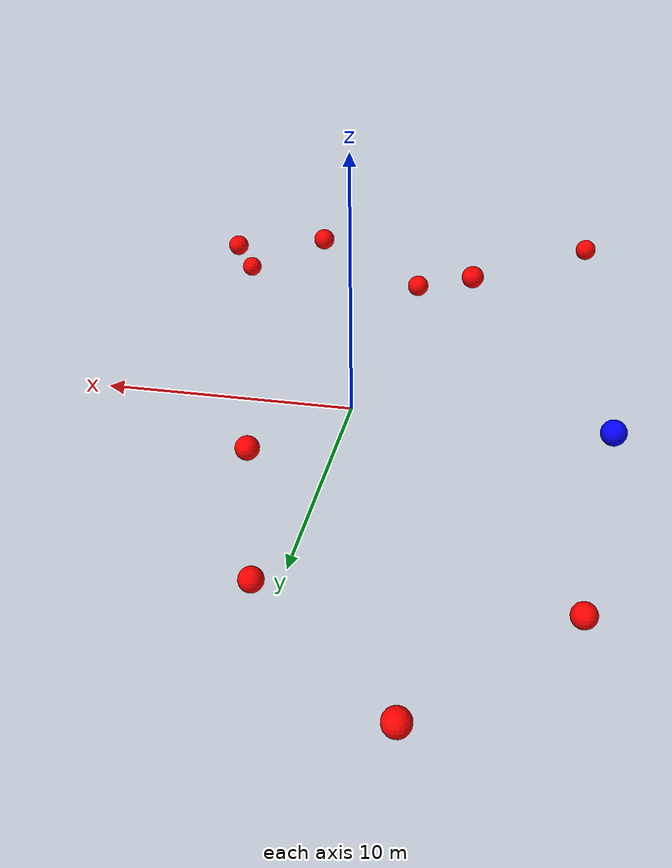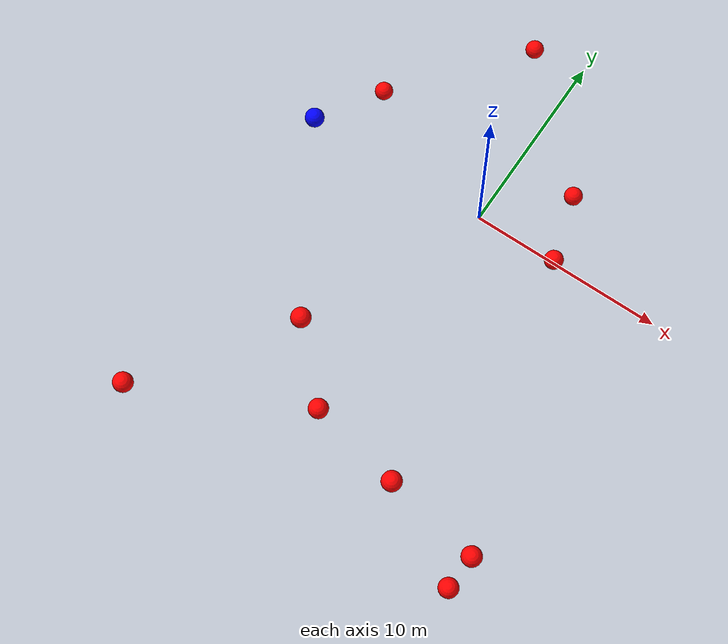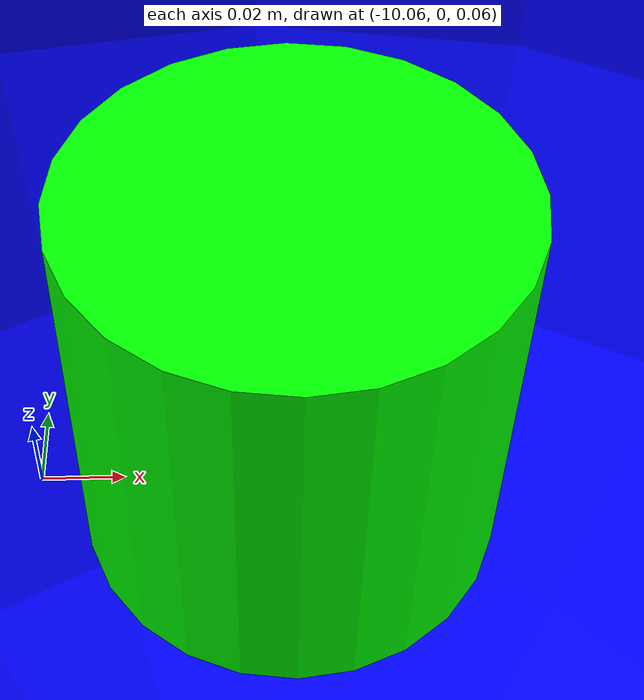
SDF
<?xml version="1.0" ?>
<sdf version="1.8">
    <world name="3d_world">
        <physics name="1ms" type="ode">
            <max_step_size>0.001</max_step_size>
            <real_time_factor>1.0</real_time_factor>
            <real_time_update_rate>1000.0</real_time_update_rate>
        </physics>
        <gravity>0 0 0</gravity>

        <plugin
            filename="gz-sim-physics-system"
            name="gz::sim::v8::systems::Physics">
        </plugin>
        <plugin
            filename="libignition-gazebo-user-commands-system.so"
            name="ignition::gazebo::systems::UserCommands">
        </plugin>
        <plugin
            filename="gz-sim-scene-broadcaster-system"
            name="gz::sim::systems::SceneBroadcaster">
        </plugin>
        <plugin
            filename="gz-sim-sensors-system"
            name="gz::sim::systems::Sensors">
            <render_engine>ogre2</render_engine>
        </plugin>

        <light type="directional" name="sun">
            <cast_shadows>true</cast_shadows>
            <pose>0 0 10 0 0 0</pose>
            <diffuse>0.8 0.8 0.8 1</diffuse>
            <specular>0.2 0.2 0.2 1</specular>
            <attenuation>
                <range>1000</range>
                <constant>0.9</constant>
                <linear>0.01</linear>
                <quadratic>0.001</quadratic>
            </attenuation>
            <direction>-0.5 0.1 -0.9</direction>
        </light>

        <!-- AGENTE -->
        <model name='agente' canonical_link='chassis'>
            <pose relative_to='world'>-10.0 0 0.0 0 0 0</pose>
            <link name='chassis'>
                <pose relative_to='__model__'>0.0 0 0.0 0 0 0</pose>
                <inertial>
                    <mass>1.14395</mass>
                    <inertia>
                        <ixx>0.095329</ixx>
                        <ixy>0</ixy>
                        <ixz>0</ixz>
                        <iyy>0.381317</iyy>
                        <iyz>0</iyz>
                        <izz>0.476646</izz>
                    </inertia>
                </inertial>
                <visual name='visual'>
                    <geometry>
                        <sphere>
                            <radius>0.5</radius>
                        </sphere>
                    </geometry>
                    <material>
                        <ambient>0.0 0.0 1.0 1</ambient>
                        <diffuse>0.0 0.0 1.0 1</diffuse>
                        <specular>0.0 0.0 1.0 1</specular>
                    </material>
                </visual>
                <collision name='collision'>
                    <geometry>
                        <sphere>
                            <radius>0.5</radius>
                        </sphere>
                    </geometry>
                </collision>
                <enable_gravity>false</enable_gravity>
            </link>

            <link name='lidar_link'>
                <pose relative_to='chassis'>0.0 0 0.1 0 0 0</pose>
                <inertial>
                    <mass>0.1</mass>
                    <inertia>
                        <ixx>0.000166667</ixx>
                        <iyy>0.000166667</iyy>
                        <izz>0.000166667</izz>
                    </inertia>
                </inertial>
                <collision name='collision'>
                    <geometry>
                        <cylinder>
                            <radius>0.05</radius>
                            <length>0.1</length>
                        </cylinder>
                    </geometry>
                </collision>
                <visual name='visual'>
                    <geometry>
                        <cylinder>
                            <radius>0.05</radius>
                            <length>0.1</length>
                        </cylinder>
                    </geometry>
                    <material>
                        <ambient>0.0 1.0 0.0 1</ambient>
                        <diffuse>0.0 1.0 0.0 1</diffuse>
                        <specular>0.0 1.0 0.0 1</specular>
                    </material>
                </visual>
                <sensor name="lidar" type="gpu_lidar">
                    <topic>scan</topic>
                    <update_rate>10</update_rate>
                    <lidar>
                        <scan>
                            <horizontal>
                                <samples>5000</samples>
                                <resolution>1</resolution>
                                <min_angle>-3.14159</min_angle>
                                <max_angle>3.14159</max_angle>
                            </horizontal>
                        </scan>
                        <range>
                            <min>0.1</min>
                            <max>10.0</max>
                            <resolution>0.01</resolution>
                        </range>
                    </lidar>
                    <visualize>true</visualize>
                    <always_on>true</always_on>
                    <update_rate>10</update_rate>
                    <pose_frame>lidar</pose_frame>
                </sensor>
                <enable_gravity>false</enable_gravity>
            </link>

            <joint name="lidar_joint" type="fixed">
                <parent>chassis</parent>
                <child>lidar_link</child>
            </joint>

            <plugin
                filename="ignition-gazebo-joint-state-publisher-system"
                name="ignition::gazebo::systems::JointStatePublisher">
            </plugin>
            <plugin
                filename="ignition-gazebo-odometry-publisher-system"
                name="ignition::gazebo::systems::OdometryPublisher">
                <dimensions>3</dimensions>
            </plugin>
            <plugin
                filename="ignition-gazebo-velocity-control-system"
                name="ignition::gazebo::systems::VelocityControl">
                <initial_linear>0.0 0 0</initial_linear>
                <initial_angular>0 0 0.0</initial_angular>
            </plugin>
            <plugin
                filename="libignition-gazebo-pose-publisher-system.so"
                name="ignition::gazebo::systems::PosePublisher">
                <topic>/agente/pose</topic>
                <frame_id>agente</frame_id>
                <update_rate>30</update_rate>
            </plugin>
        </model>

        <!-- OBSTACLE 1 -->
        <model name='obstacle_1' canonical_link='obstacle'>
            <static>false</static>
            <pose relative_to='world'>8.69 -15.90 -0.82 0 0 0</pose>
            <link name='obstacle'>
                <pose relative_to='__model__'>0.0 0 0.0 0 0 0</pose>
                <visual name='visual'>
                    <geometry>
                        <sphere>
                            <radius>0.50</radius>
                        </sphere>
                    </geometry>
                    <material>
                        <ambient>1.0 0.0 0.0 1</ambient>
                        <diffuse>1.0 0.0 0.0 1</diffuse>
                        <specular>1.0 0.0 0.0 1</specular>
                    </material>
                </visual>
                <collision name='collision'>
                    <geometry>
                        <sphere>
                            <radius>0.50</radius>
                        </sphere>
                    </geometry>
                </collision>
                <enable_gravity>false</enable_gravity>
            </link>

            <plugin
                filename="ignition-gazebo-velocity-control-system"
                name="ignition::gazebo::systems::VelocityControl">
                <initial_linear>-0.49 1.94 0.10</initial_linear>
                <initial_angular>0 0 0</initial_angular>
            </plugin>

            <plugin
                filename="ignition-gazebo-odometry-publisher-system"
                name="ignition::gazebo::systems::OdometryPublisher">
                <dimensions>3</dimensions>
            </plugin>
        </model>

        <!-- OBSTACLE 2 -->
        <model name='obstacle_2' canonical_link='obstacle'>
            <static>false</static>
            <pose relative_to='world'>2.66 5.62 -4.36 0 0 0</pose>
            <link name='obstacle'>
                <pose relative_to='__model__'>0.0 0 0.0 0 0 0</pose>
                <visual name='visual'>
                    <geometry>
                        <sphere>
                            <radius>0.50</radius>
                        </sphere>
                    </geometry>
                    <material>
                        <ambient>1.0 0.0 0.0 1</ambient>
                        <diffuse>1.0 0.0 0.0 1</diffuse>
                        <specular>1.0 0.0 0.0 1</specular>
                    </material>
                </visual>
                <collision name='collision'>
                    <geometry>
                        <sphere>
                            <radius>0.50</radius>
                        </sphere>
                    </geometry>
                </collision>
                <enable_gravity>false</enable_gravity>
            </link>

            <plugin
                filename="ignition-gazebo-velocity-control-system"
                name="ignition::gazebo::systems::VelocityControl">
                <initial_linear>-1.32 -1.19 0.92</initial_linear>
                <initial_angular>0 0 0</initial_angular>
            </plugin>

            <plugin
                filename="ignition-gazebo-odometry-publisher-system"
                name="ignition::gazebo::systems::OdometryPublisher">
                <dimensions>3</dimensions>
            </plugin>
        </model>

        <!-- OBSTACLE 3 -->
        <model name='obstacle_3' canonical_link='obstacle'>
            <static>false</static>
            <pose relative_to='world'>-9.06 -16.74 1.04 0 0 0</pose>
            <link name='obstacle'>
                <pose relative_to='__model__'>0.0 0 0.0 0 0 0</pose>
                <visual name='visual'>
                    <geometry>
                        <sphere>
                            <radius>0.50</radius>
                        </sphere>
                    </geometry>
                    <material>
                        <ambient>1.0 0.0 0.0 1</ambient>
                        <diffuse>1.0 0.0 0.0 1</diffuse>
                        <specular>1.0 0.0 0.0 1</specular>
                    </material>
                </visual>
                <collision name='collision'>
                    <geometry>
                        <sphere>
                            <radius>0.50</radius>
                        </sphere>
                    </geometry>
                </collision>
                <enable_gravity>false</enable_gravity>
            </link>

            <plugin
                filename="ignition-gazebo-velocity-control-system"
                name="ignition::gazebo::systems::VelocityControl">
                <initial_linear>1.22 1.58 -0.10</initial_linear>
                <initial_angular>0 0 0</initial_angular>
            </plugin>

            <plugin
                filename="ignition-gazebo-odometry-publisher-system"
                name="ignition::gazebo::systems::OdometryPublisher">
                <dimensions>3</dimensions>
            </plugin>
        </model>

        <!-- OBSTACLE 4 -->
        <model name='obstacle_4' canonical_link='obstacle'>
            <static>false</static>
            <pose relative_to='world'>-9.35 5.24 -4.45 0 0 0</pose>
            <link name='obstacle'>
                <pose relative_to='__model__'>0.0 0 0.0 0 0 0</pose>
                <visual name='visual'>
                    <geometry>
                        <sphere>
                            <radius>0.50</radius>
                        </sphere>
                    </geometry>
                    <material>
                        <ambient>1.0 0.0 0.0 1</ambient>
                        <diffuse>1.0 0.0 0.0 1</diffuse>
                        <specular>1.0 0.0 0.0 1</specular>
                    </material>
                </visual>
                <collision name='collision'>
                    <geometry>
                        <sphere>
                            <radius>0.50</radius>
                        </sphere>
                    </geometry>
                </collision>
                <enable_gravity>false</enable_gravity>
            </link>

            <plugin
                filename="ignition-gazebo-velocity-control-system"
                name="ignition::gazebo::systems::VelocityControl">
                <initial_linear>1.75 -0.73 0.62</initial_linear>
                <initial_angular>0 0 0</initial_angular>
            </plugin>

            <plugin
                filename="ignition-gazebo-odometry-publisher-system"
                name="ignition::gazebo::systems::OdometryPublisher">
                <dimensions>3</dimensions>
            </plugin>
        </model>

        <!-- OBSTACLE 5 -->
        <model name='obstacle_5' canonical_link='obstacle'>
            <static>false</static>
            <pose relative_to='world'>-3.70 11.78 -3.84 0 0 0</pose>
            <link name='obstacle'>
                <pose relative_to='__model__'>0.0 0 0.0 0 0 0</pose>
                <visual name='visual'>
                    <geometry>
                        <sphere>
                            <radius>0.50</radius>
                        </sphere>
                    </geometry>
                    <material>
                        <ambient>1.0 0.0 0.0 1</ambient>
                        <diffuse>1.0 0.0 0.0 1</diffuse>
                        <specular>1.0 0.0 0.0 1</specular>
                    </material>
                </visual>
                <collision name='collision'>
                    <geometry>
                        <sphere>
                            <radius>0.50</radius>
                        </sphere>
                    </geometry>
                </collision>
                <enable_gravity>false</enable_gravity>
            </link>

            <plugin
                filename="ignition-gazebo-velocity-control-system"
                name="ignition::gazebo::systems::VelocityControl">
                <initial_linear>1.23 -1.50 0.49</initial_linear>
                <initial_angular>0 0 0</initial_angular>
            </plugin>

            <plugin
                filename="ignition-gazebo-odometry-publisher-system"
                name="ignition::gazebo::systems::OdometryPublisher">
                <dimensions>3</dimensions>
            </plugin>
        </model>

        <!-- OBSTACLE 6 -->
        <model name='obstacle_6' canonical_link='obstacle'>
            <static>false</static>
            <pose relative_to='world'>8.88 -14.40 0.93 0 0 0</pose>
            <link name='obstacle'>
                <pose relative_to='__model__'>0.0 0 0.0 0 0 0</pose>
                <visual name='visual'>
                    <geometry>
                        <sphere>
                            <radius>0.50</radius>
                        </sphere>
                    </geometry>
                    <material>
                        <ambient>1.0 0.0 0.0 1</ambient>
                        <diffuse>1.0 0.0 0.0 1</diffuse>
                        <specular>1.0 0.0 0.0 1</specular>
                    </material>
                </visual>
                <collision name='collision'>
                    <geometry>
                        <sphere>
                            <radius>0.50</radius>
                        </sphere>
                    </geometry>
                </collision>
                <enable_gravity>false</enable_gravity>
            </link>

            <plugin
                filename="ignition-gazebo-velocity-control-system"
                name="ignition::gazebo::systems::VelocityControl">
                <initial_linear>-0.56 1.92 -0.12</initial_linear>
                <initial_angular>0 0 0</initial_angular>
            </plugin>

            <plugin
                filename="ignition-gazebo-odometry-publisher-system"
                name="ignition::gazebo::systems::OdometryPublisher">
                <dimensions>3</dimensions>
            </plugin>
        </model>

        <!-- OBSTACLE 7 -->
        <model name='obstacle_7' canonical_link='obstacle'>
            <static>false</static>
            <pose relative_to='world'>4.05 0.88 -1.74 0 0 0</pose>
            <link name='obstacle'>
                <pose relative_to='__model__'>0.0 0 0.0 0 0 0</pose>
                <visual name='visual'>
                    <geometry>
                        <sphere>
                            <radius>0.50</radius>
                        </sphere>
                    </geometry>
                    <material>
                        <ambient>1.0 0.0 0.0 1</ambient>
                        <diffuse>1.0 0.0 0.0 1</diffuse>
                        <specular>1.0 0.0 0.0 1</specular>
                    </material>
                </visual>
                <collision name='collision'>
                    <geometry>
                        <sphere>
                            <radius>0.50</radius>
                        </sphere>
                    </geometry>
                </collision>
                <enable_gravity>false</enable_gravity>
            </link>

            <plugin
                filename="ignition-gazebo-velocity-control-system"
                name="ignition::gazebo::systems::VelocityControl">
                <initial_linear>-0.45 -0.19 0.37</initial_linear>
                <initial_angular>0 0 0</initial_angular>
            </plugin>

            <plugin
                filename="ignition-gazebo-odometry-publisher-system"
                name="ignition::gazebo::systems::OdometryPublisher">
                <dimensions>3</dimensions>
            </plugin>
        </model>

        <!-- OBSTACLE 8 -->
        <model name='obstacle_8' canonical_link='obstacle'>
            <static>false</static>
            <pose relative_to='world'>-3.79 -9.69 1.93 0 0 0</pose>
            <link name='obstacle'>
                <pose relative_to='__model__'>0.0 0 0.0 0 0 0</pose>
                <visual name='visual'>
                    <geometry>
                        <sphere>
                            <radius>0.50</radius>
                        </sphere>
                    </geometry>
                    <material>
                        <ambient>1.0 0.0 0.0 1</ambient>
                        <diffuse>1.0 0.0 0.0 1</diffuse>
                        <specular>1.0 0.0 0.0 1</specular>
                    </material>
                </visual>
                <collision name='collision'>
                    <geometry>
                        <sphere>
                            <radius>0.50</radius>
                        </sphere>
                    </geometry>
                </collision>
                <enable_gravity>false</enable_gravity>
            </link>

            <plugin
                filename="ignition-gazebo-velocity-control-system"
                name="ignition::gazebo::systems::VelocityControl">
                <initial_linear>1.41 1.39 -0.28</initial_linear>
                <initial_angular>0 0 0</initial_angular>
            </plugin>

            <plugin
                filename="ignition-gazebo-odometry-publisher-system"
                name="ignition::gazebo::systems::OdometryPublisher">
                <dimensions>3</dimensions>
            </plugin>
        </model>

        <!-- OBSTACLE 9 -->
        <model name='obstacle_9' canonical_link='obstacle'>
            <static>false</static>
            <pose relative_to='world'>4.10 -13.73 1.81 0 0 0</pose>
            <link name='obstacle'>
                <pose relative_to='__model__'>0.0 0 0.0 0 0 0</pose>
                <visual name='visual'>
                    <geometry>
                        <sphere>
                            <radius>0.50</radius>
                        </sphere>
                    </geometry>
                    <material>
                        <ambient>1.0 0.0 0.0 1</ambient>
                        <diffuse>1.0 0.0 0.0 1</diffuse>
                        <specular>1.0 0.0 0.0 1</specular>
                    </material>
                </visual>
                <collision name='collision'>
                    <geometry>
                        <sphere>
                            <radius>0.50</radius>
                        </sphere>
                    </geometry>
                </collision>
                <enable_gravity>false</enable_gravity>
            </link>

            <plugin
                filename="ignition-gazebo-velocity-control-system"
                name="ignition::gazebo::systems::VelocityControl">
                <initial_linear>-0.63 1.88 -0.25</initial_linear>
                <initial_angular>0 0 0</initial_angular>
            </plugin>

            <plugin
                filename="ignition-gazebo-odometry-publisher-system"
                name="ignition::gazebo::systems::OdometryPublisher">
                <dimensions>3</dimensions>
            </plugin>
        </model>

        <!-- OBSTACLE 10 -->
        <model name='obstacle_10' canonical_link='obstacle'>
            <static>false</static>
            <pose relative_to='world'>-0.93 -12.49 0.15 0 0 0</pose>
            <link name='obstacle'>
                <pose relative_to='__model__'>0.0 0 0.0 0 0 0</pose>
                <visual name='visual'>
                    <geometry>
                        <sphere>
                            <radius>0.50</radius>
                        </sphere>
                    </geometry>
                    <material>
                        <ambient>1.0 0.0 0.0 1</ambient>
                        <diffuse>1.0 0.0 0.0 1</diffuse>
                        <specular>1.0 0.0 0.0 1</specular>
                    </material>
                </visual>
                <collision name='collision'>
                    <geometry>
                        <sphere>
                            <radius>0.50</radius>
                        </sphere>
                    </geometry>
                </collision>
                <enable_gravity>false</enable_gravity>
            </link>

            <plugin
                filename="ignition-gazebo-velocity-control-system"
                name="ignition::gazebo::systems::VelocityControl">
                <initial_linear>-0.25 1.98 -0.02</initial_linear>
                <initial_angular>0 0 0</initial_angular>
            </plugin>

            <plugin
                filename="ignition-gazebo-odometry-publisher-system"
                name="ignition::gazebo::systems::OdometryPublisher">
                <dimensions>3</dimensions>
            </plugin>
        </model>

    </world>
</sdf>
